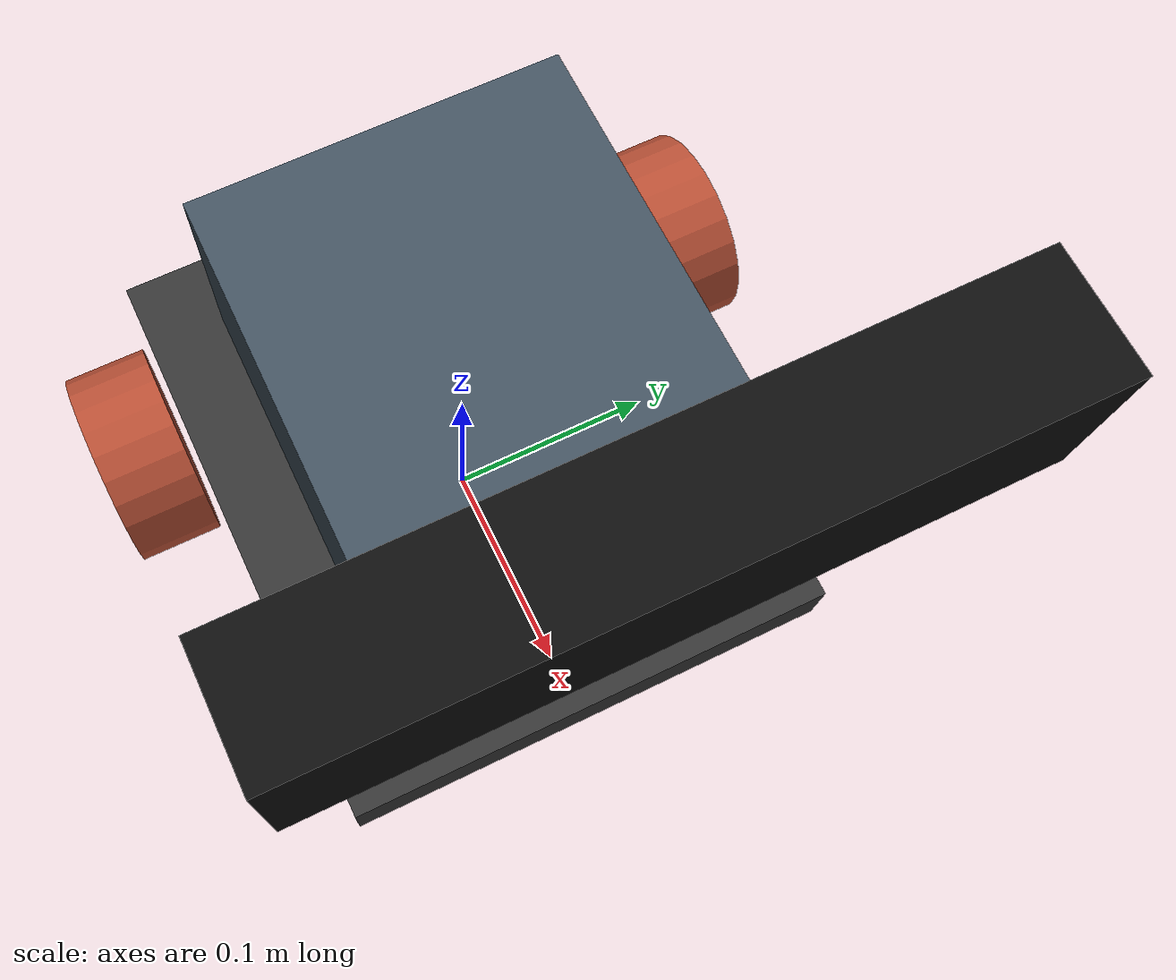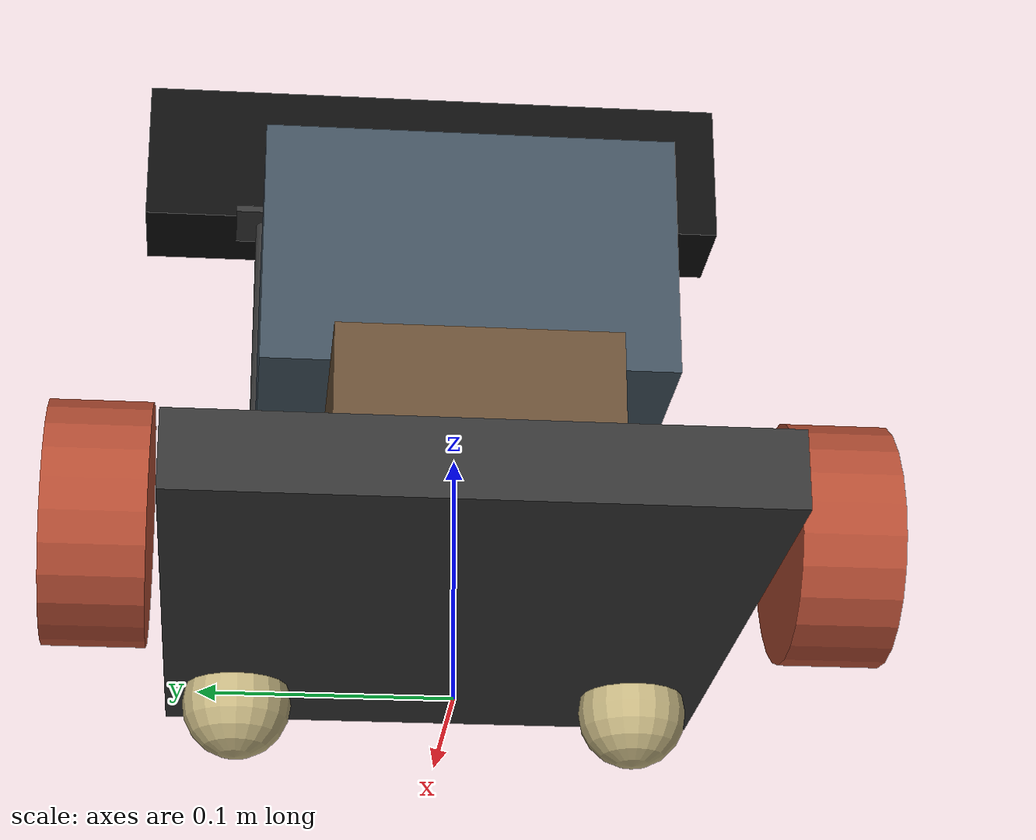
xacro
<?xml version="1.0"?>
<robot name="minibot" xmlns:xacro="http://www.ros.org/wiki/xacro">

  <material name="charcoal">
    <color rgba="0.2 0.2 0.2 1.0"/>
  </material>
  <material name="terracotta">
    <color rgba="0.7 0.3 0.2 1.0"/>
  </material>
  <material name="sand">
    <color rgba="0.76 0.70 0.50 1.0"/>
  </material>
  <material name="slate_blue">
    <color rgba="0.25 0.31 0.36 1.0"/>
  </material>
  <material name="muddy_brown">
    <color rgba="0.4 0.3 0.2 1.0"/>
  </material>
  <material name="matte_black">
    <color rgba="0.05 0.05 0.05 1.0"/>
  </material>

  <link name="base_footprint"/>

  <joint name="base_joint" type="fixed">
    <parent link="base_footprint"/>
    <child link="base_link"/>
    <origin xyz="0 0 0.04615" rpy="0 0 0"/>
  </joint>

  <link name="base_link">
    <visual>
      <geometry>
        <box size="0.27692 0.23077 0.03077"/>
      </geometry>
      <material name="charcoal"/>
    </visual>
    <collision>
      <geometry>
        <box size="0.27692 0.23077 0.03077"/>
      </geometry>
    </collision>
    <inertial>
      <mass value="3.6414"/>
      <origin xyz="0 0 0"/>
      <inertia ixx="0.01646" ixy="0.0" ixz="0.0" iyy="0.02353" iyz="0.0" izz="0.03947"/>
    </inertial>
  </link>

  <joint name="left_wheel_joint" type="continuous">
    <parent link="base_link"/>
    <child link="left_wheel"/>
    <origin xyz="-0.06154 0.13846 0.0" rpy="-1.5708 0 0"/>
    <axis xyz="0 0 1"/>
    <limit effort="20" velocity="20"/>
    <dynamics damping="0.1" friction="0.1"/>
  </joint>

  <link name="left_wheel">
    <visual>
      <geometry>
        <cylinder radius="0.04615" length="0.03846"/>
      </geometry>
      <material name="terracotta"/>
    </visual>
    <collision>
      <geometry>
        <cylinder radius="0.04615" length="0.03846"/>
      </geometry>
    </collision>
    <inertial>
      <mass value="0.7283"/>
      <origin xyz="0 0 0"/>
      <inertia ixx="0.000474" ixy="0.0" ixz="0.0" iyy="0.000474" iyz="0.0" izz="0.000776"/>
    </inertial>
  </link>

  <joint name="right_wheel_joint" type="continuous">
    <parent link="base_link"/>
    <child link="right_wheel"/>
    <origin xyz="-0.06154 -0.13846 0.0" rpy="-1.5708 0 0"/>
    <axis xyz="0 0 1"/>
    <limit effort="20" velocity="20"/>
    <dynamics damping="0.1" friction="0.1"/>
  </joint>

  <link name="right_wheel">
    <visual>
      <geometry>
        <cylinder radius="0.04615" length="0.03846"/>
      </geometry>
      <material name="terracotta"/>
    </visual>
    <collision>
      <geometry>
        <cylinder radius="0.04615" length="0.03846"/>
      </geometry>
    </collision>
    <inertial>
      <mass value="0.7283"/>
      <origin xyz="0 0 0"/>
      <inertia ixx="0.000474" ixy="0.0" ixz="0.0" iyy="0.000474" iyz="0.0" izz="0.000776"/>
    </inertial>
  </link>

  <joint name="front_left_caster_joint" type="fixed">
    <parent link="base_link"/>
    <child link="front_left_caster"/>
    <origin xyz="0.09231 0.08462 -0.02308" rpy="0 0 0"/>
  </joint>

  <link name="front_left_caster">
    <visual>
      <geometry>
        <sphere radius="0.02308"/>
      </geometry>
      <material name="sand"/>
    </visual>
    <collision>
      <geometry>
        <sphere radius="0.02308"/>
      </geometry>
    </collision>
    <inertial>
      <mass value="0.1457"/>
      <origin xyz="0 0 0"/>
      <inertia ixx="0.000031" ixy="0.0" ixz="0.0" iyy="0.000031" iyz="0.0" izz="0.000031"/>
    </inertial>
  </link>

  <joint name="front_right_caster_joint" type="fixed">
    <parent link="base_link"/>
    <child link="front_right_caster"/>
    <origin xyz="0.09231 -0.08462 -0.02308" rpy="0 0 0"/>
  </joint>

  <link name="front_right_caster">
    <visual>
      <geometry>
        <sphere radius="0.02308"/>
      </geometry>
      <material name="sand"/>
    </visual>
    <collision>
      <geometry>
        <sphere radius="0.02308"/>
      </geometry>
    </collision>
    <inertial>
      <mass value="0.1457"/>
      <origin xyz="0 0 0"/>
      <inertia ixx="0.000031" ixy="0.0" ixz="0.0" iyy="0.000031" iyz="0.0" izz="0.000031"/>
    </inertial>
  </link>

  <joint name="battery_joint" type="fixed">
    <parent link="base_link"/>
    <child link="battery_link"/>
    <origin xyz="0.0 0.0 0.03846" rpy="0 0 0"/>
  </joint>

  <link name="battery_link">
    <visual>
      <geometry>
        <box size="0.23077 0.10769 0.04615"/>
      </geometry>
      <material name="muddy_brown"/>
    </visual>
    <collision>
      <geometry>
        <box size="0.23077 0.10769 0.04615"/>
      </geometry>
    </collision>
    <inertial>
      <mass value="2.1848"/>
      <origin xyz="0 0 0"/>
      <inertia ixx="0.00250" ixy="0.0" ixz="0.0" iyy="0.01008" iyz="0.0" izz="0.01181"/>
    </inertial>
  </link>

  <joint name="orin_joint" type="fixed">
    <parent link="battery_link"/>
    <child link="orin_link"/>
    <origin xyz="0.0 0.0 0.07308" rpy="0 0 0"/>
  </joint>

  <link name="orin_link">
    <visual>
      <geometry>
        <box size="0.16154 0.16154 0.10000"/>
      </geometry>
      <material name="slate_blue"/>
    </visual>
    <collision>
      <geometry>
        <box size="0.16154 0.16154 0.10000"/>
      </geometry>
    </collision>
    <inertial>
      <mass value="2.5490"/>
      <origin xyz="0 0 0"/>
      <inertia ixx="0.00767" ixy="0.0" ixz="0.0" iyy="0.00767" iyz="0.0" izz="0.01112"/>
    </inertial>
  </link>

  <joint name="camera_rods_joint" type="fixed">
    <parent link="base_link"/>
    <child link="camera_rods_link"/>
    <origin xyz="0.12308 0.0 0.01538" rpy="0 0 0"/>
  </joint>

  <link name="camera_rods_link">
    <visual>
      <origin xyz="0.0 0.07692 0.10192" rpy="0 0 0"/>
      <geometry>
        <cylinder radius="0.00615" length="0.20385"/>
      </geometry>
      <material name="charcoal"/>
    </visual>
    <visual>
      <origin xyz="0.0 -0.07692 0.10192" rpy="0 0 0"/>
      <geometry>
        <cylinder radius="0.00615" length="0.20385"/>
      </geometry>
      <material name="charcoal"/>
    </visual>
    <visual>
      <origin xyz="0.0 0.0 0.20538" rpy="0 0 0"/>
      <geometry>
        <box size="0.03077 0.18462 0.00308"/>
      </geometry>
      <material name="charcoal"/>
    </visual>
    <collision>
      <origin xyz="0.0 0.07692 0.10192" rpy="0 0 0"/>
      <geometry>
        <cylinder radius="0.00615" length="0.20385"/>
      </geometry>
    </collision>
    <collision>
      <origin xyz="0.0 -0.07692 0.10192" rpy="0 0 0"/>
      <geometry>
        <cylinder radius="0.00615" length="0.20385"/>
      </geometry>
    </collision>
    <collision>
      <origin xyz="0.0 0.0 0.20538" rpy="0 0 0"/>
      <geometry>
        <box size="0.03077 0.18462 0.00308"/>
      </geometry>
    </collision>
    <inertial>
      <mass value="0.1821"/>
      <origin xyz="0.0 0.0 0.11731"/>
      <inertia ixx="0.000396" ixy="0.0" ixz="0.0" iyy="0.000302" iyz="0.0" izz="0.000112"/>
    </inertial>
  </link>

  <joint name="zed2i_camera_joint" type="fixed">
    <parent link="camera_rods_link"/>
    <child link="zed2i_camera_link"/>
    <origin xyz="0.01538 0.0 0.23846" rpy="0 0 0"/>
  </joint>

  <link name="zed2i_camera_link">
    <visual>
      <geometry>
        <box size="0.04615 0.26923 0.06615"/>
      </geometry>
      <material name="matte_black"/>
    </visual>
    <collision>
      <geometry>
        <box size="0.04615 0.26923 0.06615"/>
      </geometry>
    </collision>
    <inertial>
      <mass value="0.5826"/>
      <origin xyz="0 0 0"/>
      <inertia ixx="0.003732" ixy="0.0" ixz="0.0" iyy="0.000207" iyz="0.0" izz="0.003628"/>
    </inertial>
  </link>

  <joint name="camera_optical_joint" type="fixed">
    <parent link="zed2i_camera_link"/>
    <child link="camera_link_optical"/>
    <origin xyz="0 0 0" rpy="-1.5708 0 -1.5708"/>
  </joint>
  <link name="camera_link_optical"/>

  <ros2_control name="GazeboSystem" type="system">
    <hardware>
      <plugin>gz_ros2_control/GazeboSimSystem</plugin>
    </hardware>
    <joint name="left_wheel_joint">
      <command_interface name="velocity">
        <param name="min">-20</param>
        <param name="max">20</param>
      </command_interface>
      <state_interface name="position"/>
      <state_interface name="velocity"/>
    </joint>
    <joint name="right_wheel_joint">
      <command_interface name="velocity">
        <param name="min">-20</param>
        <param name="max">20</param>
      </command_interface>
      <state_interface name="position"/>
      <state_interface name="velocity"/>
    </joint>
  </ros2_control>

  <gazebo>
    <plugin filename="gz_ros2_control-system"
            name="gz_ros2_control::GazeboSimROS2ControlPlugin">
      <robot_param>robot_description</robot_param>
      <robot_param_node>robot_state_publisher</robot_param_node>
      <parameters>$(find minibot_control)/config/controllers.yaml</parameters>
      <hold_joints>false</hold_joints>
    </plugin>
  </gazebo>

  <gazebo reference="front_left_caster">
    <mu1>0.0</mu1>
    <mu2>0.0</mu2>
  </gazebo>

  <gazebo reference="front_right_caster">
    <mu1>0.0</mu1>
    <mu2>0.0</mu2>
  </gazebo>

  <gazebo reference="left_wheel">
    <mu1>2.0</mu1>
    <mu2>2.0</mu2>
  </gazebo>

  <gazebo reference="right_wheel">
    <mu1>2.0</mu1>
    <mu2>2.0</mu2>
  </gazebo>

  <gazebo reference="orin_link">
      <sensor name="minibot_imu" type="imu">
        <always_on>1</always_on>
        <update_rate>100</update_rate>
        <visualize>true</visualize>
        <topic>imu</topic>
        <ignition_frame_id>orin_link</ignition_frame_id>
      </sensor>
    </gazebo>

  <gazebo reference="zed2i_camera_link">
    <sensor name="zed2i" type="rgbd">
      <always_on>1</always_on>
      <update_rate>30</update_rate>
      <horizontal_fov>1.91986</horizontal_fov> <image>
        <width>1280</width>
        <height>720</height>
        <format>R8G8B8</format>
      </image>
      <clip>
        <near>0.3</near>
        <far>20.0</far>
      </clip>
      <topic>camera</topic>
      <ignition_frame_id>camera_link_optical</ignition_frame_id>
    </sensor>
  </gazebo>

</robot>
